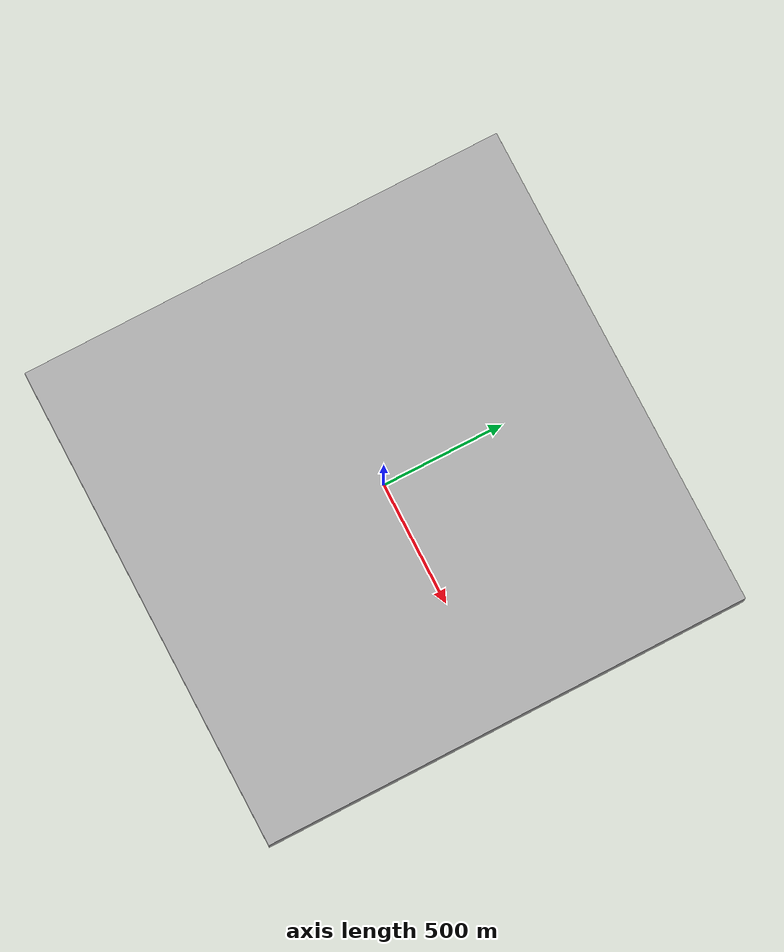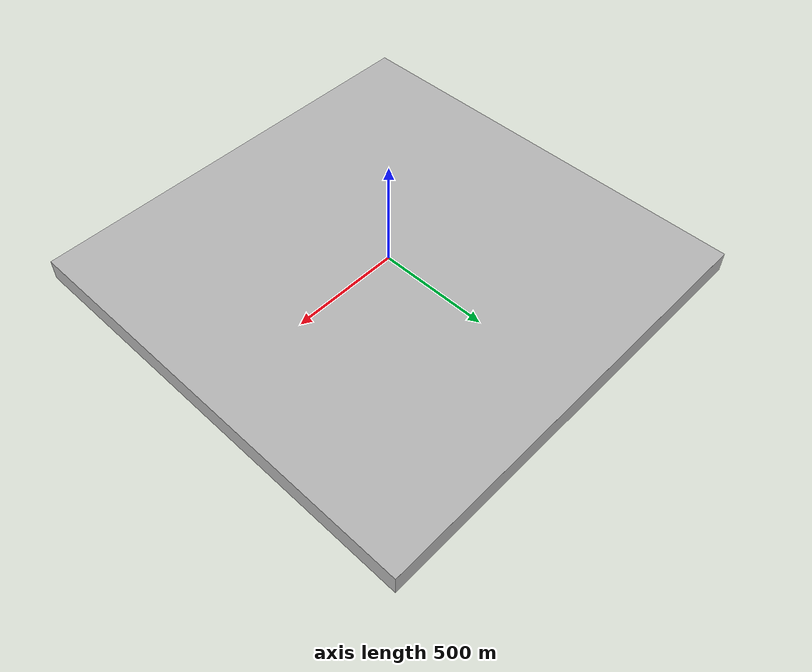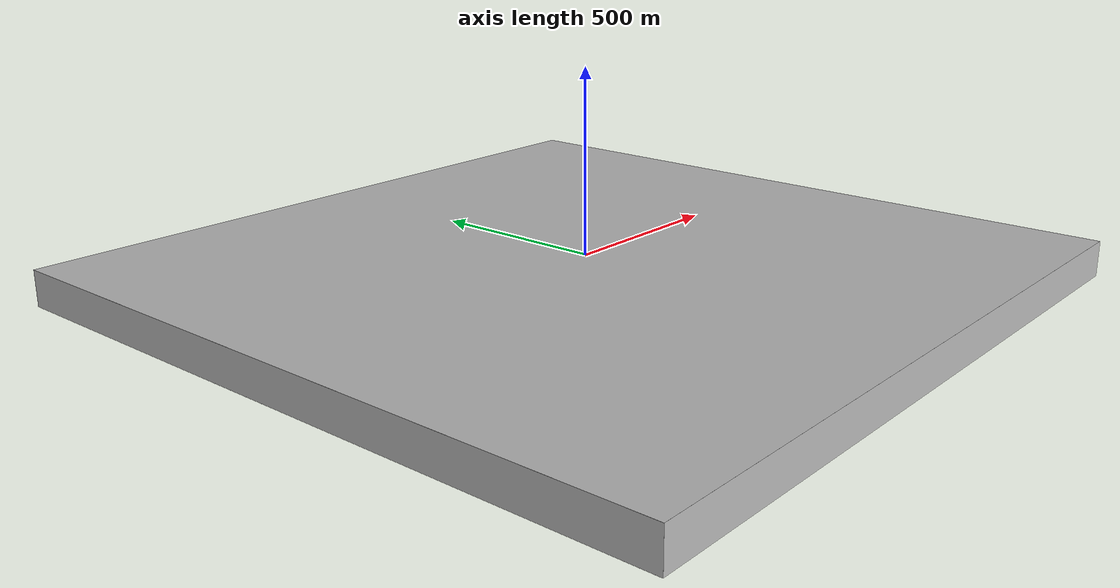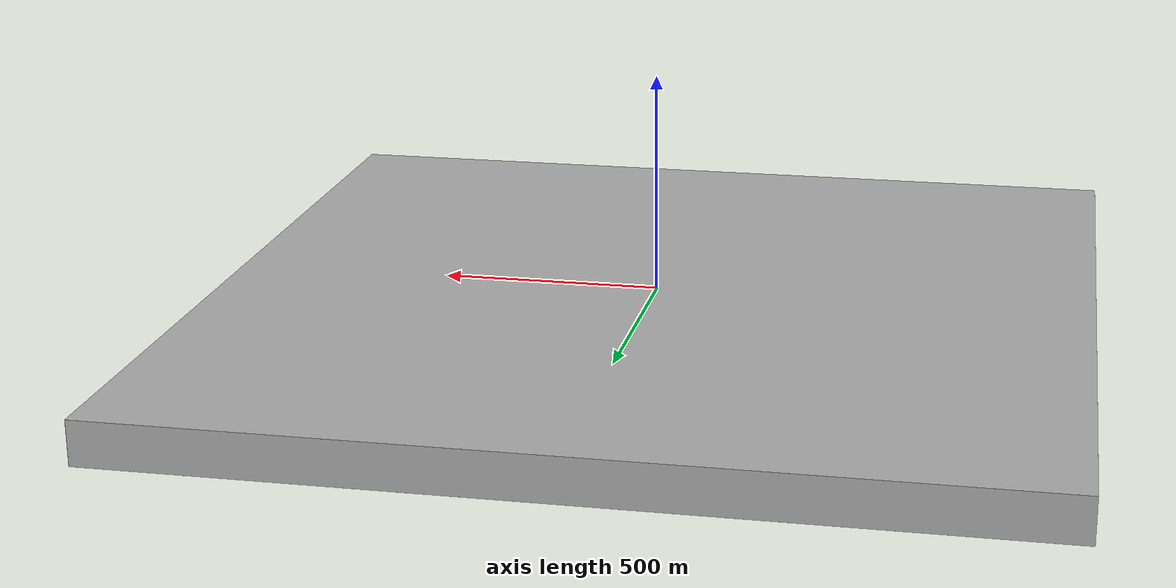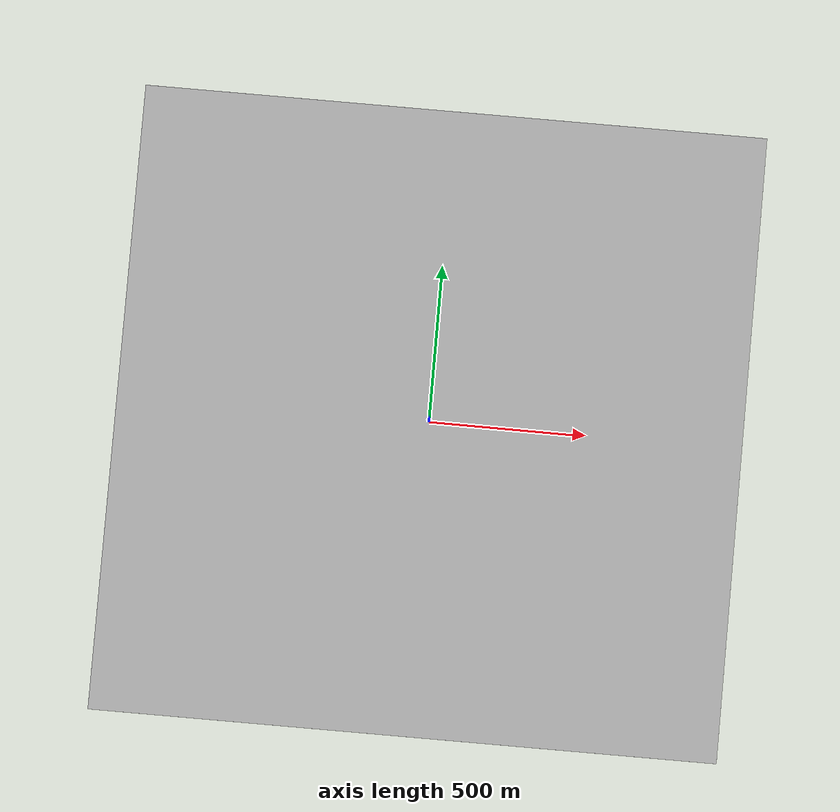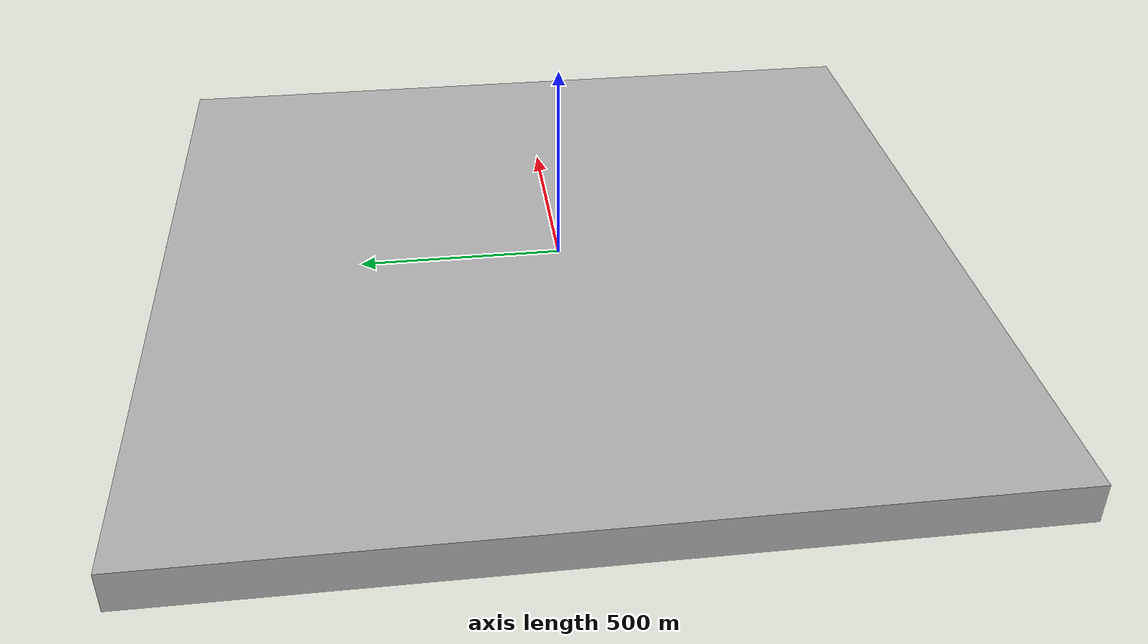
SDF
<sdf version="1.6">
 <world name="empty_underwater">
  <physics name="default_physics" default="1" type="ode">
   <max_step_size>0.002</max_step_size>
   <real_time_factor>1</real_time_factor>
   <real_time_update_rate>500</real_time_update_rate>
   <ode>
    <solver>
     <type>quick</type>
     <iters>50</iters>
     <sor>0.5</sor>
     <use_dynamic_moi_rescaling>0</use_dynamic_moi_rescaling>
    </solver>
    <constraints>
     <cfm>0</cfm>
     <erp>0.2</erp>
     <contact_max_correcting_vel>100</contact_max_correcting_vel>
     <contact_surface_layer>0.001</contact_surface_layer>
    </constraints>
   </ode>
  </physics>
  <scene>
   <ambient>0.01 0.01 0.01 1</ambient>
   <sky><clouds><speed>12</speed></clouds></sky>
   <shadows>1</shadows>
   <fog>
    <color>0.1 0.2 0.3 1</color>
    <type>linear</type>
    <density>0.001</density>
    <start>10</start>
    <end>200</end>
   </fog>
   <background>0.7 0.7 0.7 1</background>
  </scene>
  <spherical_coordinates>
   <latitude_deg>56.719</latitude_deg>
   <longitude_deg>3.51562</longitude_deg>
   <surface_model>EARTH_WGS84</surface_model>
   <elevation>0</elevation>
   <heading_deg>0</heading_deg>
  </spherical_coordinates>
  <light name="sun" type="directional">
   <pose>0 0 10 0 -0 0</pose>
   <diffuse>0.8 0.8 0.8 1</diffuse>
   <specular>0.2 0.2 0.2 1</specular>
   <attenuation>
    <range>1000</range>
    <constant>0.9</constant>
    <linear>0.01</linear>
    <quadratic>0.001</quadratic>
   </attenuation>
   <direction>-0.5 0.1 -0.9</direction>
  </light>
  <model name="ocean_box">
   <static>1</static>
   <link name="link">
    <visual name="ground">
     <cast_shadows>0</cast_shadows>
     <pose>0 0 -100 0 -0 0</pose>
     <geometry><box><size>2000 2000 0.1</size></box></geometry>
     <material>
      <script>
       <uri>file://Media/materials/scripts/sand.material</uri>
       <name>UUVSimulator/SandAndStones</name>
      </script>
     </material>
    </visual>
    <collision name="ground">
     <pose>0 0 -100 0 -0 0</pose>
     <geometry><box><size>2000 2000 0.1</size></box></geometry>
    </collision>
    <visual name="surface">
     <cast_shadows>0</cast_shadows>
     <geometry><box><size>2000 2000 0.1</size></box></geometry>
     <material>
      <script>
       <uri>file://Media/materials/scripts/water.material</uri>
       <name>UUVSimulator/StaticDeepWater</name>
      </script>
     </material>
    </visual>
    <visual name="north">
     <cast_shadows>0</cast_shadows>
     <pose>1000 0 -50 0 -0 0</pose>
     <geometry><box><size>0.1 2000 100</size></box></geometry>
     <material>
      <script><uri>file://Media/materials/scripts/water.material</uri><name>UUVSimulator/SeaWall</name></script>
     </material>
    </visual>
    <visual name="south">
     <cast_shadows>0</cast_shadows>
     <pose>-1000 0 -50 0 -0 0</pose>
     <geometry><box><size>0.1 2000 100</size></box></geometry>
     <material>
      <script><uri>file://Media/materials/scripts/water.material</uri><name>UUVSimulator/SeaWall</name></script>
     </material>
    </visual>
    <visual name="east">
     <cast_shadows>0</cast_shadows>
     <pose>0 -1000 -50 0 -0 0</pose>
     <geometry><box><size>2000 0.1 100</size></box></geometry>
     <material>
      <script><uri>file://Media/materials/scripts/water.material</uri><name>UUVSimulator/SeaWall</name></script>
     </material>
    </visual>
    <visual name="west">
     <cast_shadows>0</cast_shadows>
     <pose>0 1000 -50 0 -0 0</pose>
     <geometry><box><size>2000 0.1 100</size></box></geometry>
     <material>
      <script><uri>file://Media/materials/scripts/water.material</uri><name>UUVSimulator/SeaWall</name></script>
     </material>
    </visual>
   </link>
  </model>
  <plugin name="underwater_current_plugin" filename="libuuv_underwater_current_ros_plugin.so">
   <namespace>hydrodynamics</namespace>
   <constant_current>
    <topic>current_velocity</topic>
    <velocity><mean>0</mean><min>0</min><max>5</max><mu>0.0</mu><noiseAmp>0.0</noiseAmp></velocity>
    <horizontal_angle>
     <mean>0</mean>
     <min>-3.141592653589793238</min>
     <max>3.141592653589793238</max>
     <mu>0.0</mu>
     <noiseAmp>0.0</noiseAmp>
    </horizontal_angle>
    <vertical_angle>
     <mean>0</mean>
     <min>-3.141592653589793238</min>
     <max>3.141592653589793238</max>
     <mu>0.0</mu>
     <noiseAmp>0.0</noiseAmp>
    </vertical_angle>
   </constant_current>
  </plugin>
  <plugin name="sc_interface" filename="libuuv_sc_ros_interface_plugin.so"/>
  <gravity>0 0 -9.8</gravity>
  <magnetic_field>6e-06 2.3e-05 -4.2e-05</magnetic_field>
  <atmosphere type="adiabatic"/>
  <model name="simfloat_1001">
   <link name="robot_footprint">
    <inertial>
     <pose>0 0 -0.210989 0 -0 0</pose>
     <mass>91</mass>
     <inertia><ixx>12.889</ixx><ixy>0</ixy><ixz>0</ixz><iyy>12.889</iyy><iyz>0</iyz><izz>0.3</izz></inertia>
    </inertial>
    <collision name="robot_footprint_fixed_joint_lump__collision_collision">
     <pose>0 0 0 0 -0 1.5707</pose>
     <geometry><cylinder><length>1.3</length><radius>0.15</radius></cylinder></geometry>
    </collision>
    <collision name="robot_footprint_fixed_joint_lump__amodem_collision_collision_1">
     <pose>0 0 -0.8 0 -0 1.5707</pose>
     <geometry><cylinder><length>0.03</length><radius>0.1</radius></cylinder></geometry>
    </collision>
    <collision name="robot_footprint_fixed_joint_lump__antenna_collision_collision_2">
     <pose>0 0 0.8 0 -0 1.5707</pose>
     <geometry><cylinder><length>0.3</length><radius>0.05</radius></cylinder></geometry>
    </collision>
    <visual name="robot_footprint_fixed_joint_lump__chassis_visual_visual">
     <pose>0 0 0 0 -0 1.5707</pose>
     <geometry><cylinder><length>1.3</length><radius>0.15</radius></cylinder></geometry>
     <material>
      <script><name>Gazebo/Gray</name><uri>file://media/materials/scripts/gazebo.material</uri></script>
     </material>
    </visual>
    <visual name="robot_footprint_fixed_joint_lump__amodem_visual_visual_1">
     <pose>0 0 -0.8 0 -0 1.5707</pose>
     <geometry><cylinder><length>0.3</length><radius>0.1</radius></cylinder></geometry>
     <material>
      <script><name>Gazebo/Black</name><uri>file://media/materials/scripts/gazebo.material</uri></script>
     </material>
    </visual>
    <visual name="robot_footprint_fixed_joint_lump__antenna_visual_visual_2">
     <pose>0 0 0.8 0 -0 1.5707</pose>
     <geometry><cylinder><length>0.3</length><radius>0.05</radius></cylinder></geometry>
     <material>
      <script><name>Gazebo/Red</name><uri>file://media/materials/scripts/gazebo.material</uri></script>
     </material>
    </visual>
   </link>
   <static>0</static>
   <pose>-0.03223 0.034974 -99.3 1e-06 -5e-06 -0.008894</pose>
  </model>
 </world>
</sdf>
